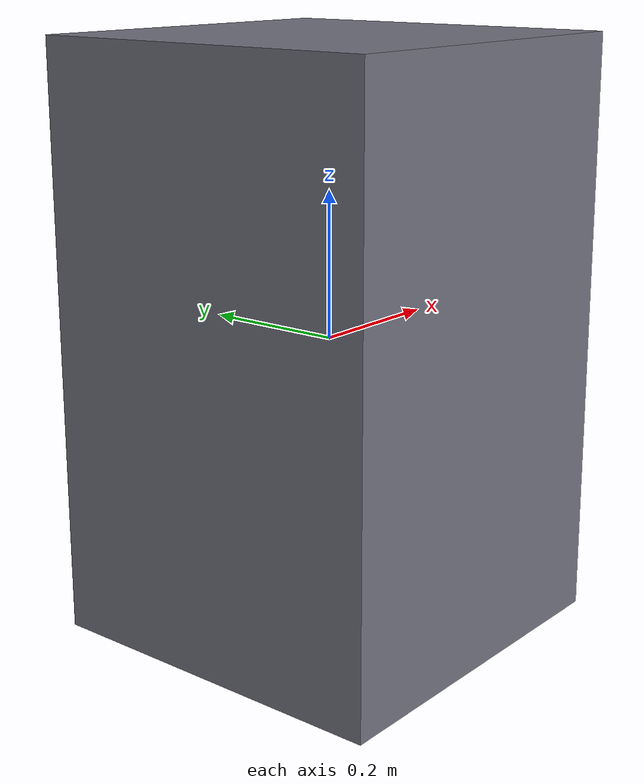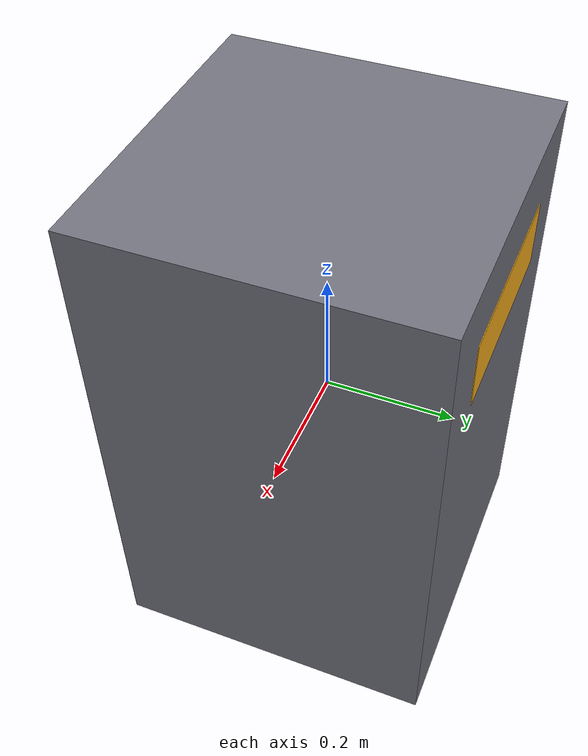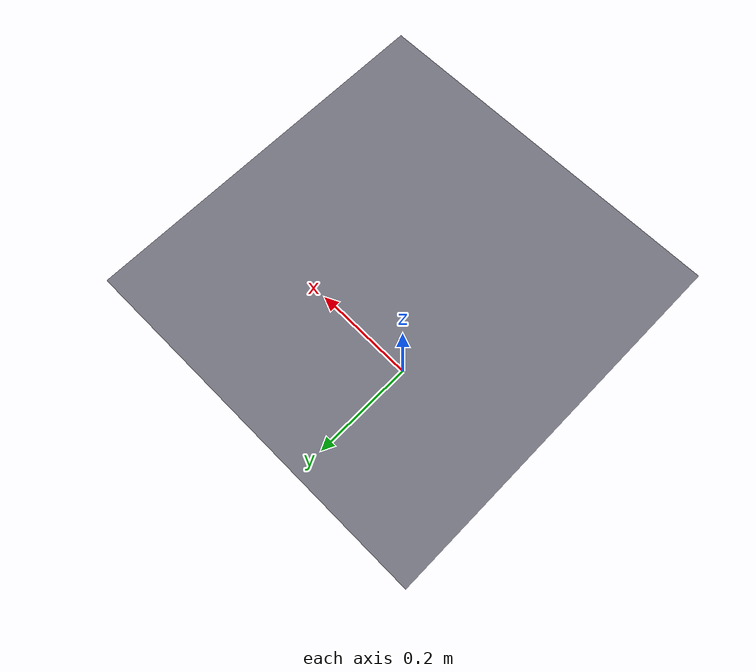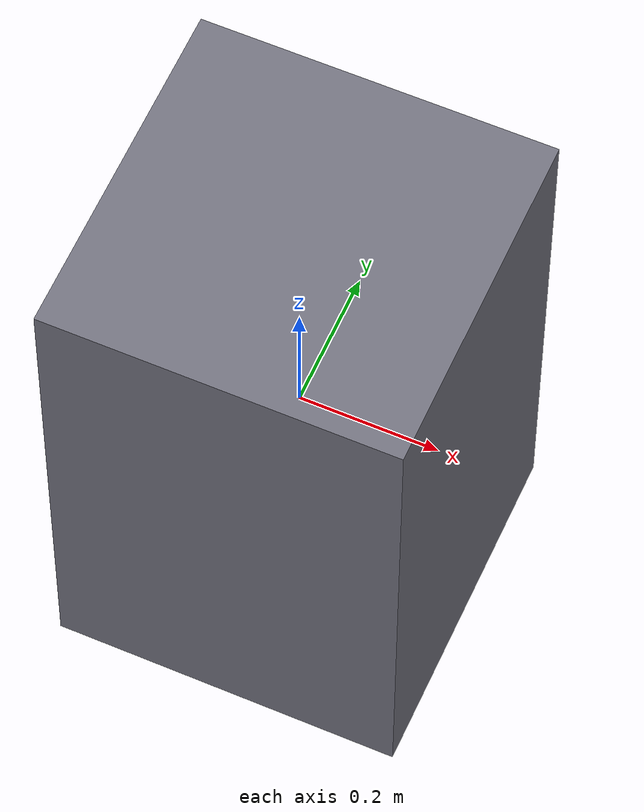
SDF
<?xml version="1.0" ?>
<sdf version="1.6">
  <!-- Not functional. Just a 50 x 50 x 80 cm box painted industrial grey
       so the arm's eventual footprint is obvious in the scene. -->
  <model name="ur7_placeholder">
    <static>true</static>
    <link name="base">
      <collision name="base_col">
        <geometry>
          <box><size>0.5 0.5 0.8</size></box>
        </geometry>
      </collision>
      <visual name="base_vis">
        <geometry>
          <box><size>0.5 0.5 0.8</size></box>
        </geometry>
        <material>
          <ambient>0.3 0.3 0.35 1</ambient>
          <diffuse>0.45 0.45 0.5 1</diffuse>
          <specular>0.2 0.2 0.2 1</specular>
        </material>
      </visual>
      <visual name="label">
        <pose>0 0.251 0.25 0 0 0</pose>
        <geometry>
          <box><size>0.3 0.001 0.1</size></box>
        </geometry>
        <material>
          <ambient>0.95 0.6 0.05 1</ambient>
          <diffuse>1.0 0.7 0.1 1</diffuse>
          <emissive>0.2 0.1 0.0 1</emissive>
        </material>
      </visual>
    </link>
  </model>
</sdf>
